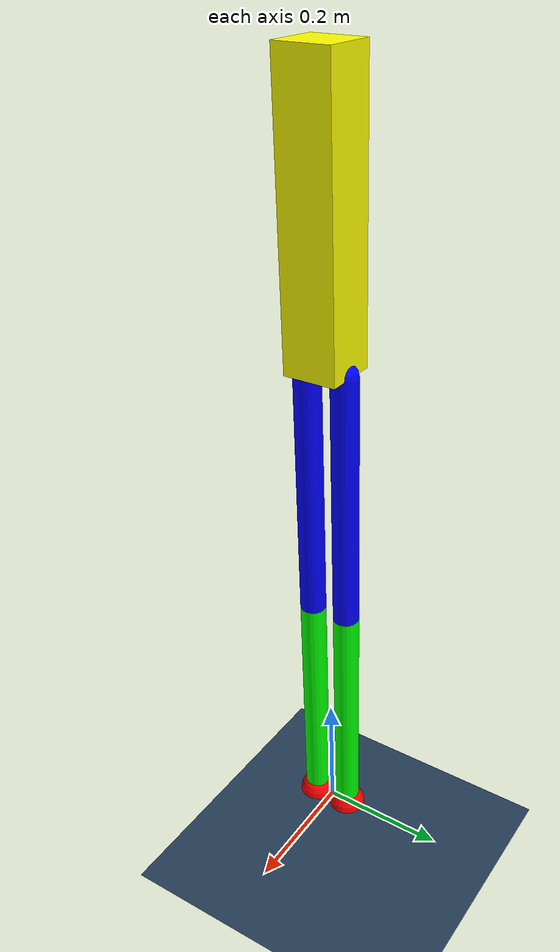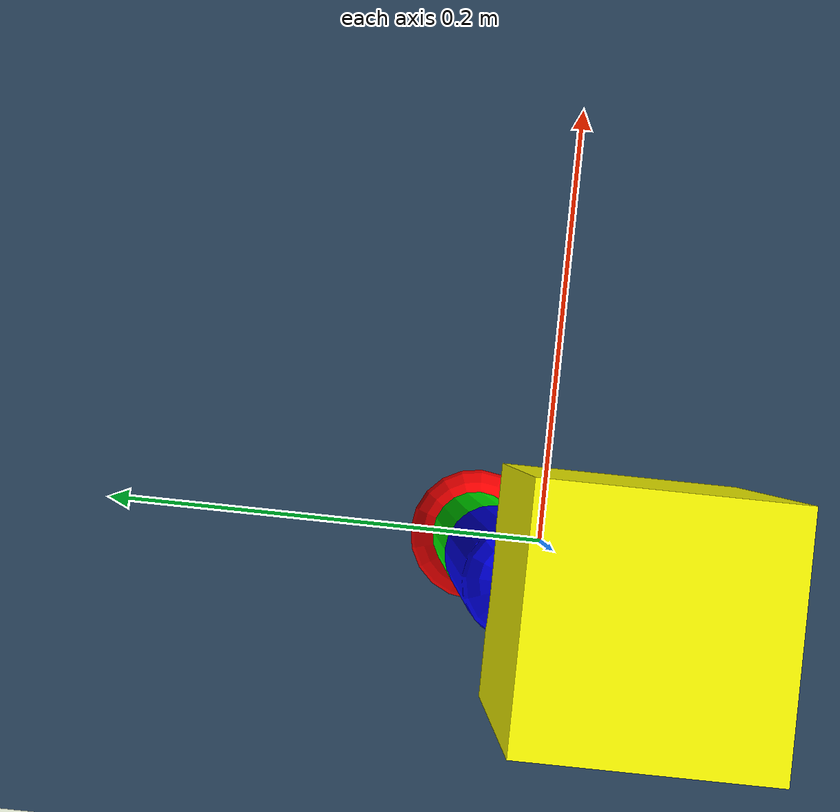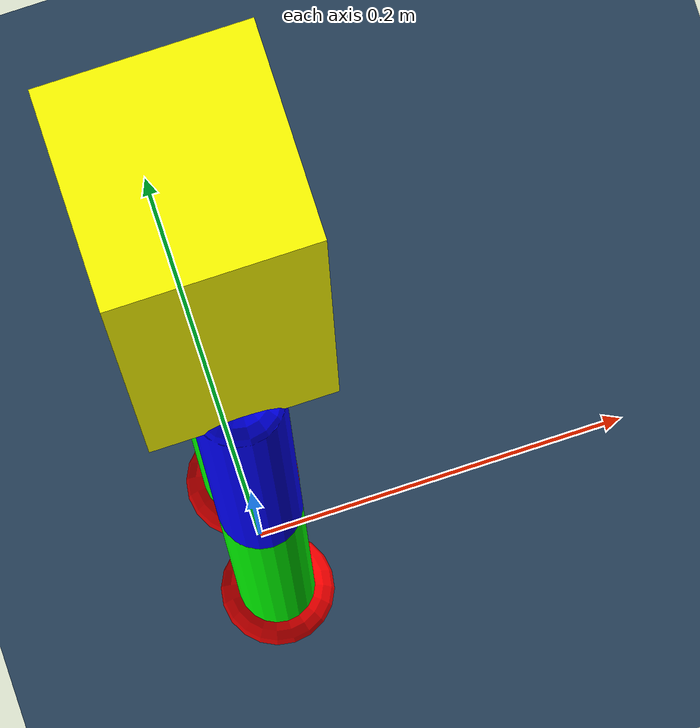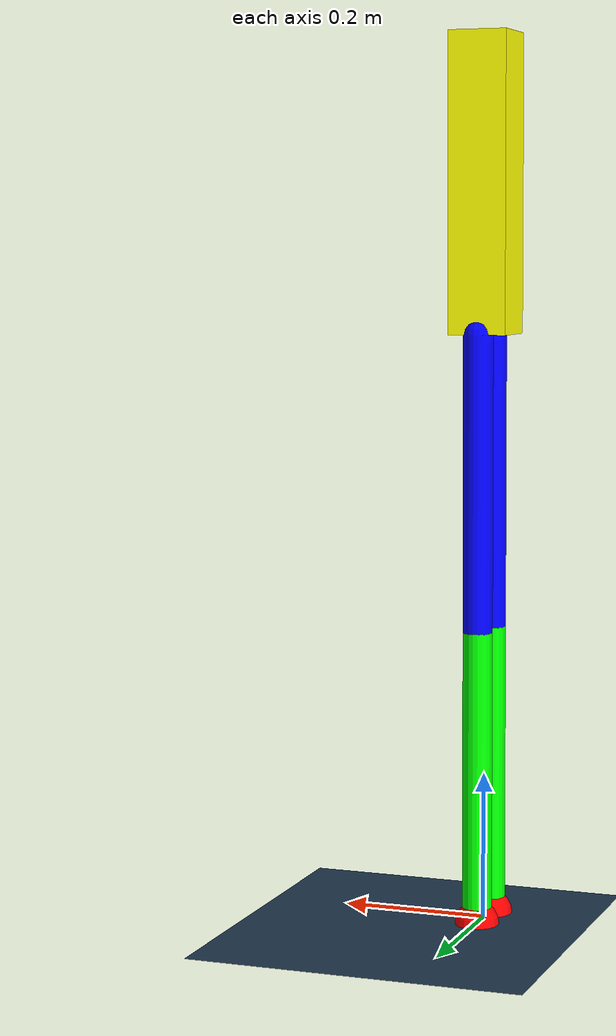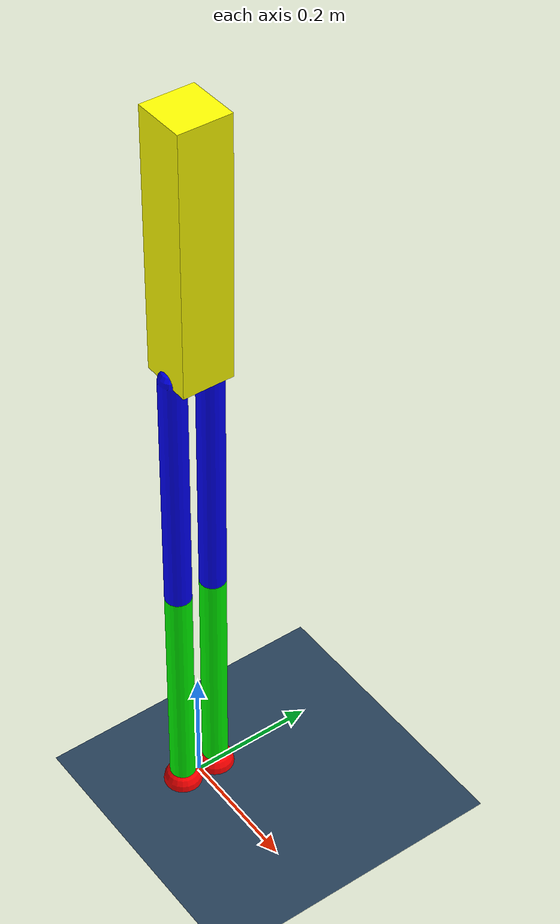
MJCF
<mujoco model="rabbit_scene">
  <include file="rabbit_model.xml"/>

  <statistic center="0 0 0.1" extent="0.8"/>

  <visual>
    <headlight diffuse="0.6 0.6 0.6" ambient="0.3 0.3 0.3" specular="0 0 0"/>
    <rgba haze="0.15 0.25 0.35 1"/>
    <global azimuth="-0" elevation="0" fovy="80"/>
  </visual>

  <asset>
    <texture type="skybox" builtin="gradient" rgb1="0.3 0.5 0.7" rgb2="0 0 0" width="512" height="3072"/>
    <texture type="2d" name="groundplane" builtin="checker" mark="edge" rgb1="0.2 0.3 0.4" rgb2="0.1 0.2 0.3"
      markrgb="0.8 0.8 0.8" width="300" height="300"/>
    <material name="groundplane" texture="groundplane" texuniform="true" texrepeat="5 5" reflectance="0.2"/>
  </asset>

  <worldbody>
    <light pos="0 0 1.5" dir="0 0 -1" directional="true"/>
    <geom name="floor" size="0 0 0.05" type="plane" material="groundplane"/>
    <camera name="default" pos="2 0 0" xyaxes="1 1 0 0 0 1" fovy="15"/>
  </worldbody>
</mujoco>

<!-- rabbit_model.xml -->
<mujoco model="rabbit">
    <compiler angle="radian" autolimits="true"/>

    <default>
        <default class="rabbit">
            <geom type="capsule"/>
        </default>
        <motor ctrlrange="-100 100"/>
        <joint armature="0.001" damping="0.001"/>
        <default class="virtual_joint">
            <joint damping="0" armature="0" frictionloss="0"/>
        </default>
    </default>

    <keyframe>
        <key name="0" qpos="0 0 0 -0.2 0.1 0.1 0.1" />
    </keyframe>

    <worldbody>
        <body name="base" pos="0 0 1.0">
            <joint name="x_joint" type="slide" axis="1 0 0" range="-100 100" class="virtual_joint"/>
            <joint name="z_joint" type="slide" axis="0 0 1" range="-100 100" class="virtual_joint"/>
            <joint name="pitch_joint" type="hinge" axis="0 1 0" class="virtual_joint"/>
            <site name="imu" pos="0 0 0"/>

            <body name="torso">
                <inertial
                    pos="0 0 0"
                    mass="10"
                    diaginertia="0.01 0.01 0.001"
                />
                <geom name="torso_geom" type="box" size="0.04 0.04 0.2" density="0" rgba="1 1 0 1"/>

                <!-- right leg -->
                <body name="right_hip" pos="0 -0.03 -0.2">
                    <inertial
                        pos="0 0 -0.2"
                        mass="1"
                        diaginertia="0.005 0.005 0.001"
                    />
                    <joint name="right_hip_ry" type="hinge" axis="0 1 0" range="-2 2"/>
                    <geom name="right_thigh_geom" type="capsule" density="0" fromto="0 0 0 0 0 -0.4" size="0.02" rgba="0 0 1 1"/>
                    <body name="right_knee" pos="0 0 -0.4">
                        <inertial
                            pos="0 0 -0.2"
                            mass="0.5"
                            diaginertia="0.005 0.005 0.001"
                        />
                        <joint name="right_knee_ry" type="hinge" axis="0 1 0" range="0 3"/>
                        <geom name="right_shin_geom" type="capsule" density="0" fromto="0 0 0 0 0 -0.4" size="0.02" rgba="0 1 0 1"/>
                        <site name="right_foot" type="sphere" pos="0 0 -0.4" size="0.03" rgba="1 0 0 1"/>
                    </body>
                </body>

                <!-- left leg -->
                <body name="left_hip" pos="0 0.03 -0.2">
                    <inertial
                        pos="0 0 -0.2"
                        mass="1"
                        diaginertia="0.005 0.005 0.001"
                    />
                    <joint name="left_hip_ry" type="hinge" axis="0 1 0" range="-2 2"/>
                    <geom name="left_thigh_geom" type="capsule" density="0" fromto="0 0 0 0 0 -0.4" size="0.02" rgba="0 0 1 1"/>
                    <body name="left_knee" pos="0 0 -0.4">
                        <inertial
                            pos="0 0 -0.2"
                            mass="0.5"
                            diaginertia="0.005 0.005 0.001"
                        />
                        <joint name="left_knee_ry" type="hinge" axis="0 1 0" range="0 3"/>
                        <geom name="left_shin_geom" type="capsule" density="0" fromto="0 0 0 0 0 -0.4" size="0.02" rgba="0 1 0 1"/>
                        <site name="left_foot" type="sphere" pos="0 0 -0.4" size="0.03" rgba="1 0 0 1"/>
                    </body>
                </body>
            </body>
        </body>
    </worldbody>

    <actuator>
        <motor name = "right_hip_ry_motor" class="rabbit" joint="right_hip_ry"/>
        <motor name = "right_knee_ry_motor" class="rabbit" joint="right_knee_ry"/>
        <motor name = "left_hip_ry_motor" class="rabbit" joint="left_hip_ry"/>
        <motor name = "left_knee_ry_motor" class="rabbit" joint="left_knee_ry"/>
    </actuator>

    <sensor>
        <jointpos name="right_hip_pos" joint="right_hip_ry"/>
        <jointpos name="right_knee_pos" joint="right_knee_ry"/>
        <jointpos name="left_hip_pos" joint="left_hip_ry"/>
        <jointpos name="left_knee_pos" joint="left_knee_ry"/>

        <jointvel name="right_hip_vel" joint="right_hip_ry"/>
        <jointvel name="right_knee_vel" joint="right_knee_ry"/>
        <jointvel name="left_hip_vel" joint="left_hip_ry"/>
        <jointvel name="left_knee_vel" joint="left_knee_ry"/>

        <jointactuatorfrc name="right_hip_tau" joint="right_hip_ry"/>
        <jointactuatorfrc name="right_knee_tau" joint="right_knee_ry"/>
        <jointactuatorfrc name="left_hip_tau" joint="left_hip_ry"/>
        <jointactuatorfrc name="left_knee_tau" joint="left_knee_ry"/>

        <framequat name="imu_quat" objtype="site" objname="imu" noise="0.01"/>
        <gyro name="imu_gyro" site="imu" noise="0.01"/>
        <accelerometer name="imu_acc" site="imu" noise="0.01"/>

        <framepos name="frame_pos" objtype="site" objname="imu" />
        <framelinvel name="frame_vel" objtype="site" objname="imu" />

        <touch name="foot_force_R" site="right_foot"/>
        <touch name="foot_force_L" site="left_foot"/>
    </sensor>
</mujoco>
